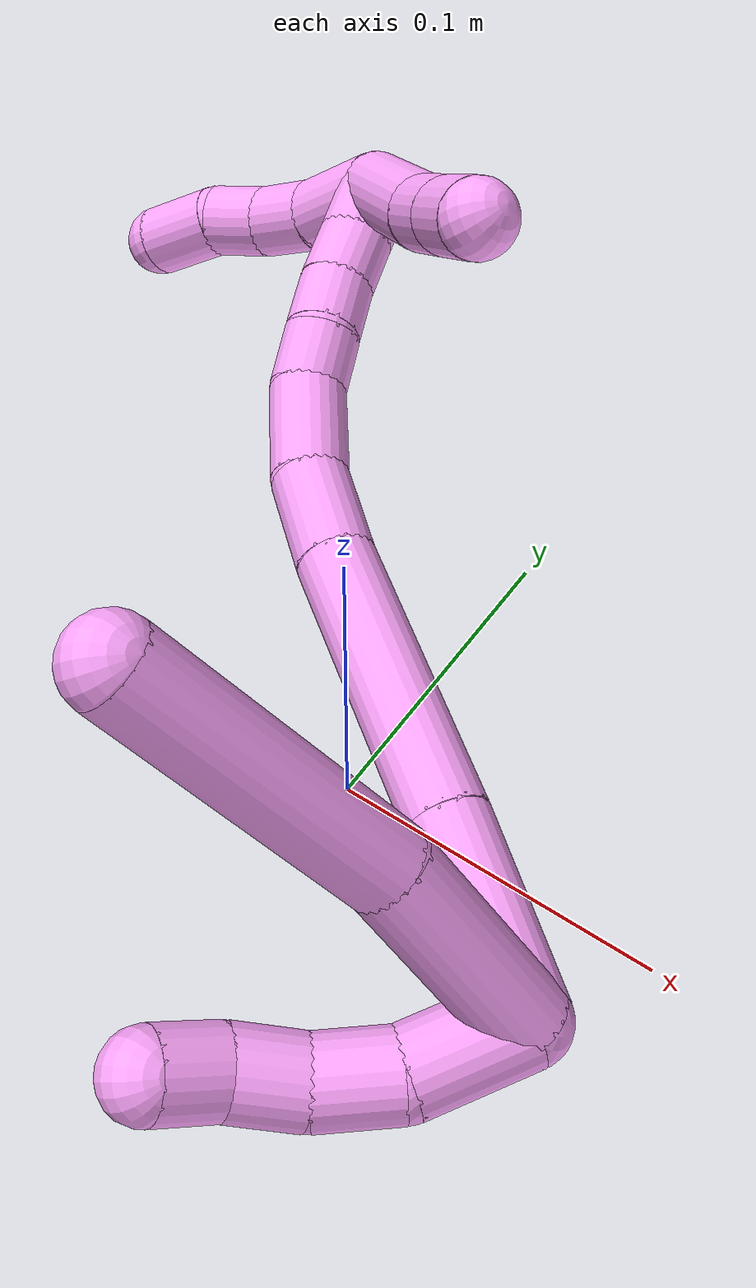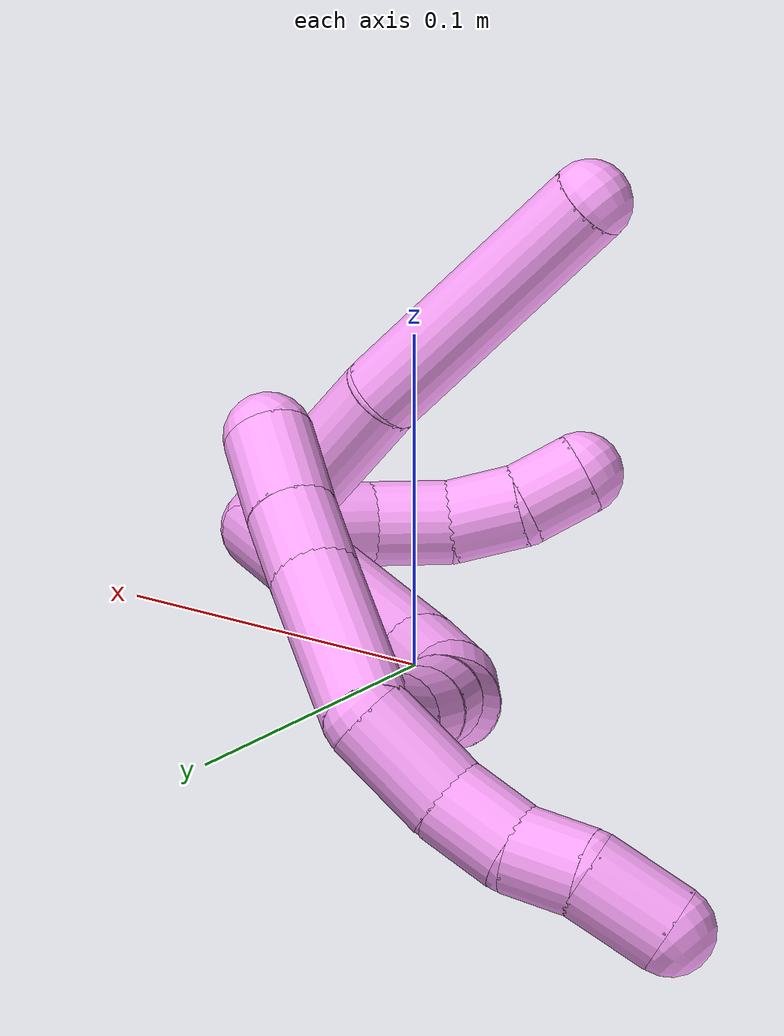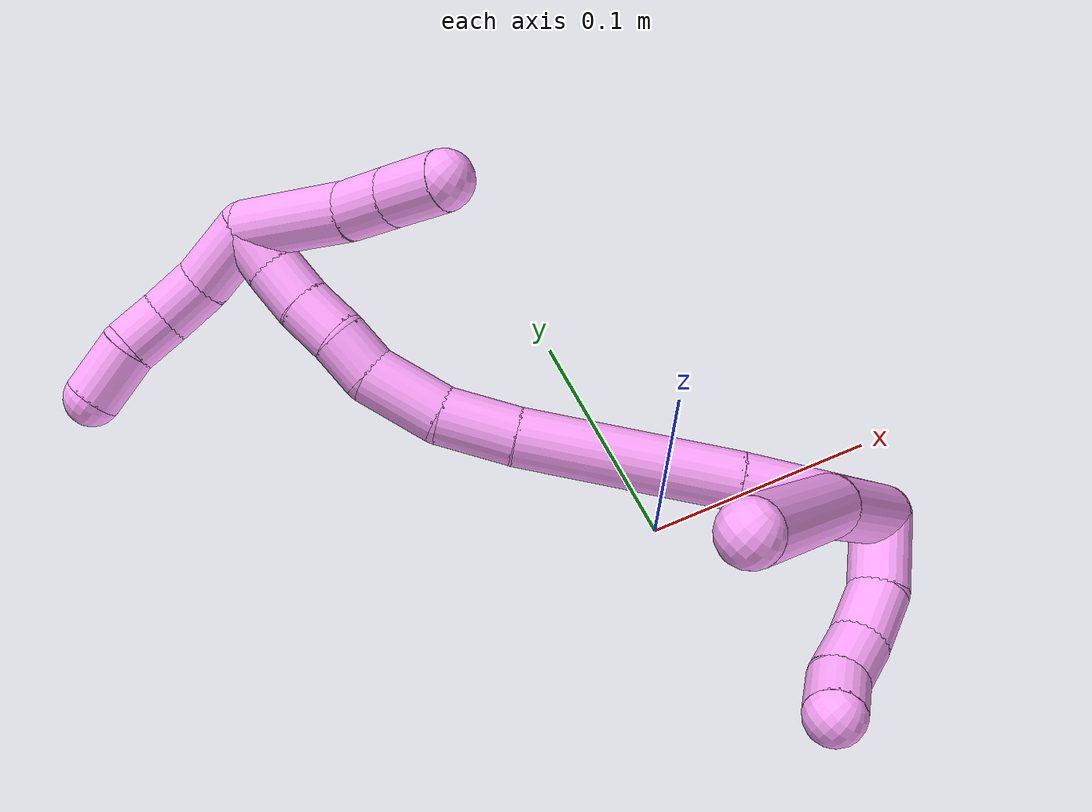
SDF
<sdf version="1.7">
 <world name="default">
  <model name="photoneo_s_sensor">
   <static>1</static>
   <pose>0 0 2 1.57079 1.57079 3.14159</pose>
   <link name="link">
    <inertial><mass>0.1</mass></inertial>
    <sensor name="sensor" type="depth">
     <update_rate>30</update_rate>
     <camera>
      <horizontal_fov>1.22</horizontal_fov>
      <image><width>1920</width><height>1200</height><format>B8G8R8</format></image>
      <clip><near>0.1</near><far>4</far></clip>
      <depth_camera><output>points</output></depth_camera>
     </camera>
     <plugin name="camera_plugin" filename="libgazebo_ros_depth_camera.so">
      <baseline>0.2</baseline>
      <alwaysOn>1</alwaysOn>
      <updateRate>0.0</updateRate>
      <cameraName>camera_ir</cameraName>
      <imageTopicName>/camera/color/image_raw</imageTopicName>
      <cameraInfoTopicName>/camera/color/camera_info</cameraInfoTopicName>
      <depthImageTopicName>/camera/depth/image_raw</depthImageTopicName>
      <depthImageCameraInfoTopicName>/camera/depth/camera_info</depthImageCameraInfoTopicName>
      <pointCloudTopicName>/camera/depth/points</pointCloudTopicName>
      <frameName>fr_optical</frameName>
      <pointCloudCutoff>0.1</pointCloudCutoff>
      <pointCloudCutoffMax>2.0</pointCloudCutoffMax>
      <distortionK1>0</distortionK1>
      <distortionK2>0</distortionK2>
      <distortionK3>0</distortionK3>
      <distortionT1>0</distortionT1>
      <distortionT2>0</distortionT2>
      <CxPrime>0</CxPrime>
      <Cx>0</Cx>
      <Cy>0</Cy>
      <focalLength>0</focalLength>
      <hackBaseline>0</hackBaseline>
     </plugin>
    </sensor>
   </link>
  </model>
  <model name="bin">
   <static>1</static>
   <link name="bottom">
    <collision name="collision-bottom">
     <pose>0 0 -0.01 0 -0 0</pose>
     <geometry><box><size>0.8 0.6 0.02</size></box></geometry>
     <surface>
      <friction><ode><mu>100</mu><mu2>100</mu2></ode></friction>
      <contact><collide_bitmask>65535</collide_bitmask></contact>
     </surface>
    </collision>
   </link>
   <link name="west_wall">
    <collision name="collision-west_wall">
     <pose>-0.41 0 0.1 0 -0 0</pose>
     <geometry><box><size>0.02 0.6 0.2</size></box></geometry>
     <surface>
      <friction><ode><mu>100</mu><mu2>100</mu2></ode></friction>
      <contact><collide_bitmask>65535</collide_bitmask></contact>
     </surface>
    </collision>
   </link>
   <link name="east_wall">
    <collision name="collision-east_wall">
     <pose>0.41 0 0.1 0 -0 0</pose>
     <geometry><box><size>0.02 0.6 0.2</size></box></geometry>
     <surface>
      <friction><ode><mu>100</mu><mu2>100</mu2></ode></friction>
      <contact><collide_bitmask>65535</collide_bitmask></contact>
     </surface>
    </collision>
   </link>
   <link name="south_wall">
    <collision name="collision-south_wall">
     <pose>0 -0.31 0.1 0 -0 0</pose>
     <geometry><box><size>0.8 0.02 0.2</size></box></geometry>
     <surface>
      <friction><ode><mu>100</mu><mu2>100</mu2></ode></friction>
      <contact><collide_bitmask>65535</collide_bitmask></contact>
     </surface>
    </collision>
   </link>
   <link name="north_wall">
    <collision name="collision-north_wall">
     <pose>0 0.31 0.1 0 -0 0</pose>
     <geometry><box><size>0.8 0.02 0.2</size></box></geometry>
     <surface>
      <friction><ode><mu>100</mu><mu2>100</mu2></ode></friction>
      <contact><collide_bitmask>65535</collide_bitmask></contact>
     </surface>
    </collision>
   </link>
  </model>
  <model name="4">
   <static>0</static>
   <link name="4">
    <collision name="collision-cylinder-e_1_2_8">
     <pose>-0.030431 0.002926 0.002023 -0.96581 -1.45442 0.873124</pose>
     <geometry><cylinder><radius>0.0125</radius><length>0.061276</length></cylinder></geometry>
     <surface>
      <friction><ode><mu>1.16</mu><mu2>1.16</mu2><slip1>0</slip1><slip2>0</slip2></ode></friction>
      <contact><ode><kp>1e+06</kp><kd>1</kd><max_vel>0</max_vel><min_depth>0.001</min_depth></ode></contact>
     </surface>
    </collision>
    <visual name="visual-cylinder-e_1_2_8">
     <pose>-0.030431 0.002926 0.002023 -0.96581 -1.45442 0.873124</pose>
     <geometry><cylinder><radius>0.0125</radius><length>0.061276</length></cylinder></geometry>
     <material><ambient>1 0.65098 0.996078 1</ambient></material>
    </visual>
    <collision name="collision-cylinder-e_2_8_6">
     <pose>-0.105145 0.003219 0.004202 1.51184 -1.5113 -1.45256</pose>
     <geometry><cylinder><radius>0.0125</radius><length>0.088724</length></cylinder></geometry>
     <surface>
      <friction><ode><mu>1.16</mu><mu2>1.16</mu2><slip1>0</slip1><slip2>0</slip2></ode></friction>
      <contact><ode><kp>1e+06</kp><kd>1</kd><max_vel>0</max_vel><min_depth>0.001</min_depth></ode></contact>
     </surface>
    </collision>
    <visual name="visual-cylinder-e_2_8_6">
     <pose>-0.105145 0.003219 0.004202 1.51184 -1.5113 -1.45256</pose>
     <geometry><cylinder><radius>0.0125</radius><length>0.088724</length></cylinder></geometry>
     <material><ambient>1 0.65098 0.996078 1</ambient></material>
    </visual>
    <collision name="collision-cylinder-e_1_2_9">
     <pose>-0.007997 -0.011916 -0.009075 2.22168 -0.490427 -0.935523</pose>
     <geometry><cylinder><radius>0.0125</radius><length>0.033959</length></cylinder></geometry>
     <surface>
      <friction><ode><mu>1.16</mu><mu2>1.16</mu2><slip1>0</slip1><slip2>0</slip2></ode></friction>
      <contact><ode><kp>1e+06</kp><kd>1</kd><max_vel>0</max_vel><min_depth>0.001</min_depth></ode></contact>
     </surface>
    </collision>
    <visual name="visual-cylinder-e_1_2_9">
     <pose>-0.007997 -0.011916 -0.009075 2.22168 -0.490427 -0.935523</pose>
     <geometry><cylinder><radius>0.0125</radius><length>0.033959</length></cylinder></geometry>
     <material><ambient>1 0.65098 0.996078 1</ambient></material>
    </visual>
    <collision name="collision-cylinder-e_2_9_10">
     <pose>-0.0237 -0.029314 -0.025626 2.50883 -0.693419 -1.66923</pose>
     <geometry><cylinder><radius>0.0125</radius><length>0.02411</length></cylinder></geometry>
     <surface>
      <friction><ode><mu>1.16</mu><mu2>1.16</mu2><slip1>0</slip1><slip2>0</slip2></ode></friction>
      <contact><ode><kp>1e+06</kp><kd>1</kd><max_vel>0</max_vel><min_depth>0.001</min_depth></ode></contact>
     </surface>
    </collision>
    <visual name="visual-cylinder-e_2_9_10">
     <pose>-0.0237 -0.029314 -0.025626 2.50883 -0.693419 -1.66923</pose>
     <geometry><cylinder><radius>0.0125</radius><length>0.02411</length></cylinder></geometry>
     <material><ambient>1 0.65098 0.996078 1</ambient></material>
    </visual>
    <collision name="collision-cylinder-e_3_10_11">
     <pose>-0.040454 -0.038343 -0.038072 2.5219 -0.977296 -2.05753</pose>
     <geometry><cylinder><radius>0.0125</radius><length>0.021831</length></cylinder></geometry>
     <surface>
      <friction><ode><mu>1.16</mu><mu2>1.16</mu2><slip1>0</slip1><slip2>0</slip2></ode></friction>
      <contact><ode><kp>1e+06</kp><kd>1</kd><max_vel>0</max_vel><min_depth>0.001</min_depth></ode></contact>
     </surface>
    </collision>
    <visual name="visual-cylinder-e_3_10_11">
     <pose>-0.040454 -0.038343 -0.038072 2.5219 -0.977296 -2.05753</pose>
     <geometry><cylinder><radius>0.0125</radius><length>0.021831</length></cylinder></geometry>
     <material><ambient>1 0.65098 0.996078 1</ambient></material>
    </visual>
    <collision name="collision-cylinder-e_4_11_5">
     <pose>-0.057885 -0.047046 -0.045074 1.94615 -0.986498 -1.33675</pose>
     <geometry><cylinder><radius>0.0125</radius><length>0.0201</length></cylinder></geometry>
     <surface>
      <friction><ode><mu>1.16</mu><mu2>1.16</mu2><slip1>0</slip1><slip2>0</slip2></ode></friction>
      <contact><ode><kp>1e+06</kp><kd>1</kd><max_vel>0</max_vel><min_depth>0.001</min_depth></ode></contact>
     </surface>
    </collision>
    <visual name="visual-cylinder-e_4_11_5">
     <pose>-0.057885 -0.047046 -0.045074 1.94615 -0.986498 -1.33675</pose>
     <geometry><cylinder><radius>0.0125</radius><length>0.0201</length></cylinder></geometry>
     <material><ambient>1 0.65098 0.996078 1</ambient></material>
    </visual>
    <collision name="collision-cylinder-e_1_2_12">
     <pose>-0.013792 0.022454 -0.013097 -2.09881 -0.487793 0.817637</pose>
     <geometry><cylinder><radius>0.0125</radius><length>0.058853</length></cylinder></geometry>
     <surface>
      <friction><ode><mu>1.16</mu><mu2>1.16</mu2><slip1>0</slip1><slip2>0</slip2></ode></friction>
      <contact><ode><kp>1e+06</kp><kd>1</kd><max_vel>0</max_vel><min_depth>0.001</min_depth></ode></contact>
     </surface>
    </collision>
    <visual name="visual-cylinder-e_1_2_12">
     <pose>-0.013792 0.022454 -0.013097 -2.09881 -0.487793 0.817637</pose>
     <geometry><cylinder><radius>0.0125</radius><length>0.058853</length></cylinder></geometry>
     <material><ambient>1 0.65098 0.996078 1</ambient></material>
    </visual>
    <collision name="collision-cylinder-e_2_12_13">
     <pose>-0.049412 0.079624 -0.048219 -2.13618 -0.488094 0.850513</pose>
     <geometry><cylinder><radius>0.0125</radius><length>0.093097</length></cylinder></geometry>
     <surface>
      <friction><ode><mu>1.16</mu><mu2>1.16</mu2><slip1>0</slip1><slip2>0</slip2></ode></friction>
      <contact><ode><kp>1e+06</kp><kd>1</kd><max_vel>0</max_vel><min_depth>0.001</min_depth></ode></contact>
     </surface>
    </collision>
    <visual name="visual-cylinder-e_2_12_13">
     <pose>-0.049412 0.079624 -0.048219 -2.13618 -0.488094 0.850513</pose>
     <geometry><cylinder><radius>0.0125</radius><length>0.093097</length></cylinder></geometry>
     <material><ambient>1 0.65098 0.996078 1</ambient></material>
    </visual>
    <collision name="collision-cylinder-e_3_13_14">
     <pose>-0.078499 0.127157 -0.076903 -2.04987 -0.465659 0.744377</pose>
     <geometry><cylinder><radius>0.0125</radius><length>0.032332</length></cylinder></geometry>
     <surface>
      <friction><ode><mu>1.16</mu><mu2>1.16</mu2><slip1>0</slip1><slip2>0</slip2></ode></friction>
      <contact><ode><kp>1e+06</kp><kd>1</kd><max_vel>0</max_vel><min_depth>0.001</min_depth></ode></contact>
     </surface>
    </collision>
    <visual name="visual-cylinder-e_3_13_14">
     <pose>-0.078499 0.127157 -0.076903 -2.04987 -0.465659 0.744377</pose>
     <geometry><cylinder><radius>0.0125</radius><length>0.032332</length></cylinder></geometry>
     <material><ambient>1 0.65098 0.996078 1</ambient></material>
    </visual>
    <collision name="collision-cylinder-e_4_14_15">
     <pose>-0.09199 0.155315 -0.087058 -1.79492 -0.377175 0.469688</pose>
     <geometry><cylinder><radius>0.0125</radius><length>0.033844</length></cylinder></geometry>
     <surface>
      <friction><ode><mu>1.16</mu><mu2>1.16</mu2><slip1>0</slip1><slip2>0</slip2></ode></friction>
      <contact><ode><kp>1e+06</kp><kd>1</kd><max_vel>0</max_vel><min_depth>0.001</min_depth></ode></contact>
     </surface>
    </collision>
    <visual name="visual-cylinder-e_4_14_15">
     <pose>-0.09199 0.155315 -0.087058 -1.79492 -0.377175 0.469688</pose>
     <geometry><cylinder><radius>0.0125</radius><length>0.033844</length></cylinder></geometry>
     <material><ambient>1 0.65098 0.996078 1</ambient></material>
    </visual>
    <collision name="collision-cylinder-e_5_15_16">
     <pose>-0.101318 0.180206 -0.089397 -1.45018 -0.311304 0.276327</pose>
     <geometry><cylinder><radius>0.0125</radius><length>0.020214</length></cylinder></geometry>
     <surface>
      <friction><ode><mu>1.16</mu><mu2>1.16</mu2><slip1>0</slip1><slip2>0</slip2></ode></friction>
      <contact><ode><kp>1e+06</kp><kd>1</kd><max_vel>0</max_vel><min_depth>0.001</min_depth></ode></contact>
     </surface>
    </collision>
    <visual name="visual-cylinder-e_5_15_16">
     <pose>-0.101318 0.180206 -0.089397 -1.45018 -0.311304 0.276327</pose>
     <geometry><cylinder><radius>0.0125</radius><length>0.020214</length></cylinder></geometry>
     <material><ambient>1 0.65098 0.996078 1</ambient></material>
    </visual>
    <collision name="collision-cylinder-e_6_16_17">
     <pose>-0.106401 0.199799 -0.088652 -1.61188 -0.195175 0.203309</pose>
     <geometry><cylinder><radius>0.0125</radius><length>0.02049</length></cylinder></geometry>
     <surface>
      <friction><ode><mu>1.16</mu><mu2>1.16</mu2><slip1>0</slip1><slip2>0</slip2></ode></friction>
      <contact><ode><kp>1e+06</kp><kd>1</kd><max_vel>0</max_vel><min_depth>0.001</min_depth></ode></contact>
     </surface>
    </collision>
    <visual name="visual-cylinder-e_6_16_17">
     <pose>-0.106401 0.199799 -0.088652 -1.61188 -0.195175 0.203309</pose>
     <geometry><cylinder><radius>0.0125</radius><length>0.02049</length></cylinder></geometry>
     <material><ambient>1 0.65098 0.996078 1</ambient></material>
    </visual>
    <collision name="collision-cylinder-e_7_17_18">
     <pose>-0.109931 0.219819 -0.088353 -1.49954 -0.153017 0.14252</pose>
     <geometry><cylinder><radius>0.0125</radius><length>0.020243</length></cylinder></geometry>
     <surface>
      <friction><ode><mu>1.16</mu><mu2>1.16</mu2><slip1>0</slip1><slip2>0</slip2></ode></friction>
      <contact><ode><kp>1e+06</kp><kd>1</kd><max_vel>0</max_vel><min_depth>0.001</min_depth></ode></contact>
     </surface>
    </collision>
    <visual name="visual-cylinder-e_7_17_18">
     <pose>-0.109931 0.219819 -0.088353 -1.49954 -0.153017 0.14252</pose>
     <geometry><cylinder><radius>0.0125</radius><length>0.020243</length></cylinder></geometry>
     <material><ambient>1 0.65098 0.996078 1</ambient></material>
    </visual>
    <collision name="collision-cylinder-e_8_18_1">
     <pose>-0.113638 0.239872 -0.085826 -1.39259 -0.208403 0.174409</pose>
     <geometry><cylinder><radius>0.0125</radius><length>0.020927</length></cylinder></geometry>
     <surface>
      <friction><ode><mu>1.16</mu><mu2>1.16</mu2><slip1>0</slip1><slip2>0</slip2></ode></friction>
      <contact><ode><kp>1e+06</kp><kd>1</kd><max_vel>0</max_vel><min_depth>0.001</min_depth></ode></contact>
     </surface>
    </collision>
    <visual name="visual-cylinder-e_8_18_1">
     <pose>-0.113638 0.239872 -0.085826 -1.39259 -0.208403 0.174409</pose>
     <geometry><cylinder><radius>0.0125</radius><length>0.020927</length></cylinder></geometry>
     <material><ambient>1 0.65098 0.996078 1</ambient></material>
    </visual>
    <collision name="collision-cylinder-e_1_1_19">
     <pose>-0.116992 0.249839 -0.099203 3.13453 -0.078137 -2.96138</pose>
     <geometry><cylinder><radius>0.0125</radius><length>0.030477</length></cylinder></geometry>
     <surface>
      <friction><ode><mu>1.16</mu><mu2>1.16</mu2><slip1>0</slip1><slip2>0</slip2></ode></friction>
      <contact><ode><kp>1e+06</kp><kd>1</kd><max_vel>0</max_vel><min_depth>0.001</min_depth></ode></contact>
     </surface>
    </collision>
    <visual name="visual-cylinder-e_1_1_19">
     <pose>-0.116992 0.249839 -0.099203 3.13453 -0.078137 -2.96138</pose>
     <geometry><cylinder><radius>0.0125</radius><length>0.030477</length></cylinder></geometry>
     <material><ambient>1 0.65098 0.996078 1</ambient></material>
    </visual>
    <collision name="collision-cylinder-e_2_19_20">
     <pose>-0.121313 0.250221 -0.125206 -3.09638 -0.281627 2.82522</pose>
     <geometry><cylinder><radius>0.0125</radius><length>0.022532</length></cylinder></geometry>
     <surface>
      <friction><ode><mu>1.16</mu><mu2>1.16</mu2><slip1>0</slip1><slip2>0</slip2></ode></friction>
      <contact><ode><kp>1e+06</kp><kd>1</kd><max_vel>0</max_vel><min_depth>0.001</min_depth></ode></contact>
     </surface>
    </collision>
    <visual name="visual-cylinder-e_2_19_20">
     <pose>-0.121313 0.250221 -0.125206 -3.09638 -0.281627 2.82522</pose>
     <geometry><cylinder><radius>0.0125</radius><length>0.022532</length></cylinder></geometry>
     <material><ambient>1 0.65098 0.996078 1</ambient></material>
    </visual>
    <collision name="collision-cylinder-e_3_20_21">
     <pose>-0.12969 0.249928 -0.144628 3.05099 -0.545391 -2.82021</pose>
     <geometry><cylinder><radius>0.0125</radius><length>0.020227</length></cylinder></geometry>
     <surface>
      <friction><ode><mu>1.16</mu><mu2>1.16</mu2><slip1>0</slip1><slip2>0</slip2></ode></friction>
      <contact><ode><kp>1e+06</kp><kd>1</kd><max_vel>0</max_vel><min_depth>0.001</min_depth></ode></contact>
     </surface>
    </collision>
    <visual name="visual-cylinder-e_3_20_21">
     <pose>-0.12969 0.249928 -0.144628 3.05099 -0.545391 -2.82021</pose>
     <geometry><cylinder><radius>0.0125</radius><length>0.020227</length></cylinder></geometry>
     <material><ambient>1 0.65098 0.996078 1</ambient></material>
    </visual>
    <collision name="collision-cylinder-e_4_21_4">
     <pose>-0.137974 0.246929 -0.166081 2.9707 -0.228932 -1.86096</pose>
     <geometry><cylinder><radius>0.0125</radius><length>0.026764</length></cylinder></geometry>
     <surface>
      <friction><ode><mu>1.16</mu><mu2>1.16</mu2><slip1>0</slip1><slip2>0</slip2></ode></friction>
      <contact><ode><kp>1e+06</kp><kd>1</kd><max_vel>0</max_vel><min_depth>0.001</min_depth></ode></contact>
     </surface>
    </collision>
    <visual name="visual-cylinder-e_4_21_4">
     <pose>-0.137974 0.246929 -0.166081 2.9707 -0.228932 -1.86096</pose>
     <geometry><cylinder><radius>0.0125</radius><length>0.026764</length></cylinder></geometry>
     <material><ambient>1 0.65098 0.996078 1</ambient></material>
    </visual>
    <collision name="collision-cylinder-e_1_1_22">
     <pose>-0.114732 0.233535 -0.064002 0.686933 0.041378 0.0148</pose>
     <geometry><cylinder><radius>0.0125</radius><length>0.0518</length></cylinder></geometry>
     <surface>
      <friction><ode><mu>1.16</mu><mu2>1.16</mu2><slip1>0</slip1><slip2>0</slip2></ode></friction>
      <contact><ode><kp>1e+06</kp><kd>1</kd><max_vel>0</max_vel><min_depth>0.001</min_depth></ode></contact>
     </surface>
    </collision>
    <visual name="visual-cylinder-e_1_1_22">
     <pose>-0.114732 0.233535 -0.064002 0.686933 0.041378 0.0148</pose>
     <geometry><cylinder><radius>0.0125</radius><length>0.0518</length></cylinder></geometry>
     <material><ambient>1 0.65098 0.996078 1</ambient></material>
    </visual>
    <collision name="collision-cylinder-e_2_22_23">
     <pose>-0.114142 0.210924 -0.03475 0.590893 -0.043298 -0.01318</pose>
     <geometry><cylinder><radius>0.0125</radius><length>0.022282</length></cylinder></geometry>
     <surface>
      <friction><ode><mu>1.16</mu><mu2>1.16</mu2><slip1>0</slip1><slip2>0</slip2></ode></friction>
      <contact><ode><kp>1e+06</kp><kd>1</kd><max_vel>0</max_vel><min_depth>0.001</min_depth></ode></contact>
     </surface>
    </collision>
    <visual name="visual-cylinder-e_2_22_23">
     <pose>-0.114142 0.210924 -0.03475 0.590893 -0.043298 -0.01318</pose>
     <geometry><cylinder><radius>0.0125</radius><length>0.022282</length></cylinder></geometry>
     <material><ambient>1 0.65098 0.996078 1</ambient></material>
    </visual>
    <collision name="collision-cylinder-e_3_23_3">
     <pose>-0.115613 0.197335 -0.014906 0.60861 -0.076382 -0.023999</pose>
     <geometry><cylinder><radius>0.0125</radius><length>0.025918</length></cylinder></geometry>
     <surface>
      <friction><ode><mu>1.16</mu><mu2>1.16</mu2><slip1>0</slip1><slip2>0</slip2></ode></friction>
      <contact><ode><kp>1e+06</kp><kd>1</kd><max_vel>0</max_vel><min_depth>0.001</min_depth></ode></contact>
     </surface>
    </collision>
    <visual name="visual-cylinder-e_3_23_3">
     <pose>-0.115613 0.197335 -0.014906 0.60861 -0.076382 -0.023999</pose>
     <geometry><cylinder><radius>0.0125</radius><length>0.025918</length></cylinder></geometry>
     <material><ambient>1 0.65098 0.996078 1</ambient></material>
    </visual>
    <collision name="collision-sphere-3">
     <pose>-0.116602 0.189948 -0.004305 0 -0 0</pose>
     <geometry><sphere><radius>0.0125</radius></sphere></geometry>
     <surface>
      <friction><ode><mu>1.16</mu><mu2>1.16</mu2><slip1>0</slip1><slip2>0</slip2></ode></friction>
      <contact><ode><kp>1e+06</kp><kd>1</kd><max_vel>0</max_vel><min_depth>0.001</min_depth></ode></contact>
     </surface>
    </collision>
    <visual name="visual-sphere-3">
     <pose>-0.116602 0.189948 -0.004305 0 -0 0</pose>
     <geometry><sphere><radius>0.0125</radius></sphere></geometry>
     <material><ambient>1 0.65098 0.996078 1</ambient></material>
    </visual>
    <collision name="collision-sphere-23">
     <pose>-0.114625 0.204723 -0.025507 0 -0 0</pose>
     <geometry><sphere><radius>0.0125</radius></sphere></geometry>
     <surface>
      <friction><ode><mu>1.16</mu><mu2>1.16</mu2><slip1>0</slip1><slip2>0</slip2></ode></friction>
      <contact><ode><kp>1e+06</kp><kd>1</kd><max_vel>0</max_vel><min_depth>0.001</min_depth></ode></contact>
     </surface>
    </collision>
    <visual name="visual-sphere-23">
     <pose>-0.114625 0.204723 -0.025507 0 -0 0</pose>
     <geometry><sphere><radius>0.0125</radius></sphere></geometry>
     <material><ambient>1 0.65098 0.996078 1</ambient></material>
    </visual>
    <collision name="collision-sphere-22">
     <pose>-0.11366 0.217124 -0.043994 0 -0 0</pose>
     <geometry><sphere><radius>0.0125</radius></sphere></geometry>
     <surface>
      <friction><ode><mu>1.16</mu><mu2>1.16</mu2><slip1>0</slip1><slip2>0</slip2></ode></friction>
      <contact><ode><kp>1e+06</kp><kd>1</kd><max_vel>0</max_vel><min_depth>0.001</min_depth></ode></contact>
     </surface>
    </collision>
    <visual name="visual-sphere-22">
     <pose>-0.11366 0.217124 -0.043994 0 -0 0</pose>
     <geometry><sphere><radius>0.0125</radius></sphere></geometry>
     <material><ambient>1 0.65098 0.996078 1</ambient></material>
    </visual>
    <collision name="collision-sphere-4">
     <pose>-0.14101 0.244713 -0.178924 0 -0 0</pose>
     <geometry><sphere><radius>0.0125</radius></sphere></geometry>
     <surface>
      <friction><ode><mu>1.16</mu><mu2>1.16</mu2><slip1>0</slip1><slip2>0</slip2></ode></friction>
      <contact><ode><kp>1e+06</kp><kd>1</kd><max_vel>0</max_vel><min_depth>0.001</min_depth></ode></contact>
     </surface>
    </collision>
    <visual name="visual-sphere-4">
     <pose>-0.14101 0.244713 -0.178924 0 -0 0</pose>
     <geometry><sphere><radius>0.0125</radius></sphere></geometry>
     <material><ambient>1 0.65098 0.996078 1</ambient></material>
    </visual>
    <collision name="collision-sphere-21">
     <pose>-0.134937 0.249146 -0.153238 0 -0 0</pose>
     <geometry><sphere><radius>0.0125</radius></sphere></geometry>
     <surface>
      <friction><ode><mu>1.16</mu><mu2>1.16</mu2><slip1>0</slip1><slip2>0</slip2></ode></friction>
      <contact><ode><kp>1e+06</kp><kd>1</kd><max_vel>0</max_vel><min_depth>0.001</min_depth></ode></contact>
     </surface>
    </collision>
    <visual name="visual-sphere-21">
     <pose>-0.134937 0.249146 -0.153238 0 -0 0</pose>
     <geometry><sphere><radius>0.0125</radius></sphere></geometry>
     <material><ambient>1 0.65098 0.996078 1</ambient></material>
    </visual>
    <collision name="collision-sphere-20">
     <pose>-0.124444 0.25071 -0.136017 0 -0 0</pose>
     <geometry><sphere><radius>0.0125</radius></sphere></geometry>
     <surface>
      <friction><ode><mu>1.16</mu><mu2>1.16</mu2><slip1>0</slip1><slip2>0</slip2></ode></friction>
      <contact><ode><kp>1e+06</kp><kd>1</kd><max_vel>0</max_vel><min_depth>0.001</min_depth></ode></contact>
     </surface>
    </collision>
    <visual name="visual-sphere-20">
     <pose>-0.124444 0.25071 -0.136017 0 -0 0</pose>
     <geometry><sphere><radius>0.0125</radius></sphere></geometry>
     <material><ambient>1 0.65098 0.996078 1</ambient></material>
    </visual>
    <collision name="collision-sphere-11">
     <pose>-0.049503 -0.041888 -0.043042 0 -0 0</pose>
     <geometry><sphere><radius>0.0125</radius></sphere></geometry>
     <surface>
      <friction><ode><mu>1.16</mu><mu2>1.16</mu2><slip1>0</slip1><slip2>0</slip2></ode></friction>
      <contact><ode><kp>1e+06</kp><kd>1</kd><max_vel>0</max_vel><min_depth>0.001</min_depth></ode></contact>
     </surface>
    </collision>
    <visual name="visual-sphere-11">
     <pose>-0.049503 -0.041888 -0.043042 0 -0 0</pose>
     <geometry><sphere><radius>0.0125</radius></sphere></geometry>
     <material><ambient>1 0.65098 0.996078 1</ambient></material>
    </visual>
    <collision name="collision-sphere-10">
     <pose>-0.031405 -0.034797 -0.033103 0 -0 0</pose>
     <geometry><sphere><radius>0.0125</radius></sphere></geometry>
     <surface>
      <friction><ode><mu>1.16</mu><mu2>1.16</mu2><slip1>0</slip1><slip2>0</slip2></ode></friction>
      <contact><ode><kp>1e+06</kp><kd>1</kd><max_vel>0</max_vel><min_depth>0.001</min_depth></ode></contact>
     </surface>
    </collision>
    <visual name="visual-sphere-10">
     <pose>-0.031405 -0.034797 -0.033103 0 -0 0</pose>
     <geometry><sphere><radius>0.0125</radius></sphere></geometry>
     <material><ambient>1 0.65098 0.996078 1</ambient></material>
    </visual>
    <collision name="collision-sphere-6">
     <pose>-0.149429 0.000586 0.004357 0 -0 0</pose>
     <geometry><sphere><radius>0.0125</radius></sphere></geometry>
     <surface>
      <friction><ode><mu>1.16</mu><mu2>1.16</mu2><slip1>0</slip1><slip2>0</slip2></ode></friction>
      <contact><ode><kp>1e+06</kp><kd>1</kd><max_vel>0</max_vel><min_depth>0.001</min_depth></ode></contact>
     </surface>
    </collision>
    <visual name="visual-sphere-6">
     <pose>-0.149429 0.000586 0.004357 0 -0 0</pose>
     <geometry><sphere><radius>0.0125</radius></sphere></geometry>
     <material><ambient>1 0.65098 0.996078 1</ambient></material>
    </visual>
    <collision name="collision-sphere-9">
     <pose>-0.015995 -0.023832 -0.01815 0 -0 0</pose>
     <geometry><sphere><radius>0.0125</radius></sphere></geometry>
     <surface>
      <friction><ode><mu>1.16</mu><mu2>1.16</mu2><slip1>0</slip1><slip2>0</slip2></ode></friction>
      <contact><ode><kp>1e+06</kp><kd>1</kd><max_vel>0</max_vel><min_depth>0.001</min_depth></ode></contact>
     </surface>
    </collision>
    <visual name="visual-sphere-9">
     <pose>-0.015995 -0.023832 -0.01815 0 -0 0</pose>
     <geometry><sphere><radius>0.0125</radius></sphere></geometry>
     <material><ambient>1 0.65098 0.996078 1</ambient></material>
    </visual>
    <collision name="collision-sphere-2">
     <geometry><sphere><radius>0.0125</radius></sphere></geometry>
     <surface>
      <friction><ode><mu>1.16</mu><mu2>1.16</mu2><slip1>0</slip1><slip2>0</slip2></ode></friction>
      <contact><ode><kp>1e+06</kp><kd>1</kd><max_vel>0</max_vel><min_depth>0.001</min_depth></ode></contact>
     </surface>
    </collision>
    <visual name="visual-sphere-2">
     <geometry><sphere><radius>0.0125</radius></sphere></geometry>
     <material><ambient>1 0.65098 0.996078 1</ambient></material>
    </visual>
    <collision name="collision-sphere-19">
     <pose>-0.118182 0.249732 -0.114394 0 -0 0</pose>
     <geometry><sphere><radius>0.0125</radius></sphere></geometry>
     <surface>
      <friction><ode><mu>1.16</mu><mu2>1.16</mu2><slip1>0</slip1><slip2>0</slip2></ode></friction>
      <contact><ode><kp>1e+06</kp><kd>1</kd><max_vel>0</max_vel><min_depth>0.001</min_depth></ode></contact>
     </surface>
    </collision>
    <visual name="visual-sphere-19">
     <pose>-0.118182 0.249732 -0.114394 0 -0 0</pose>
     <geometry><sphere><radius>0.0125</radius></sphere></geometry>
     <material><ambient>1 0.65098 0.996078 1</ambient></material>
    </visual>
    <collision name="collision-sphere-8">
     <pose>-0.060861 0.005852 0.004046 0 -0 0</pose>
     <geometry><sphere><radius>0.0125</radius></sphere></geometry>
     <surface>
      <friction><ode><mu>1.16</mu><mu2>1.16</mu2><slip1>0</slip1><slip2>0</slip2></ode></friction>
      <contact><ode><kp>1e+06</kp><kd>1</kd><max_vel>0</max_vel><min_depth>0.001</min_depth></ode></contact>
     </surface>
    </collision>
    <visual name="visual-sphere-8">
     <pose>-0.060861 0.005852 0.004046 0 -0 0</pose>
     <geometry><sphere><radius>0.0125</radius></sphere></geometry>
     <material><ambient>1 0.65098 0.996078 1</ambient></material>
    </visual>
    <collision name="collision-sphere-5">
     <pose>-0.066268 -0.052204 -0.047106 0 -0 0</pose>
     <geometry><sphere><radius>0.0125</radius></sphere></geometry>
     <surface>
      <friction><ode><mu>1.16</mu><mu2>1.16</mu2><slip1>0</slip1><slip2>0</slip2></ode></friction>
      <contact><ode><kp>1e+06</kp><kd>1</kd><max_vel>0</max_vel><min_depth>0.001</min_depth></ode></contact>
     </surface>
    </collision>
    <visual name="visual-sphere-5">
     <pose>-0.066268 -0.052204 -0.047106 0 -0 0</pose>
     <geometry><sphere><radius>0.0125</radius></sphere></geometry>
     <material><ambient>1 0.65098 0.996078 1</ambient></material>
    </visual>
    <collision name="collision-sphere-12">
     <pose>-0.027583 0.044909 -0.026193 0 -0 0</pose>
     <geometry><sphere><radius>0.0125</radius></sphere></geometry>
     <surface>
      <friction><ode><mu>1.16</mu><mu2>1.16</mu2><slip1>0</slip1><slip2>0</slip2></ode></friction>
      <contact><ode><kp>1e+06</kp><kd>1</kd><max_vel>0</max_vel><min_depth>0.001</min_depth></ode></contact>
     </surface>
    </collision>
    <visual name="visual-sphere-12">
     <pose>-0.027583 0.044909 -0.026193 0 -0 0</pose>
     <geometry><sphere><radius>0.0125</radius></sphere></geometry>
     <material><ambient>1 0.65098 0.996078 1</ambient></material>
    </visual>
    <collision name="collision-sphere-13">
     <pose>-0.07124 0.114339 -0.070245 0 -0 0</pose>
     <geometry><sphere><radius>0.0125</radius></sphere></geometry>
     <surface>
      <friction><ode><mu>1.16</mu><mu2>1.16</mu2><slip1>0</slip1><slip2>0</slip2></ode></friction>
      <contact><ode><kp>1e+06</kp><kd>1</kd><max_vel>0</max_vel><min_depth>0.001</min_depth></ode></contact>
     </surface>
    </collision>
    <visual name="visual-sphere-13">
     <pose>-0.07124 0.114339 -0.070245 0 -0 0</pose>
     <geometry><sphere><radius>0.0125</radius></sphere></geometry>
     <material><ambient>1 0.65098 0.996078 1</ambient></material>
    </visual>
    <collision name="collision-sphere-14">
     <pose>-0.085758 0.139976 -0.083561 0 -0 0</pose>
     <geometry><sphere><radius>0.0125</radius></sphere></geometry>
     <surface>
      <friction><ode><mu>1.16</mu><mu2>1.16</mu2><slip1>0</slip1><slip2>0</slip2></ode></friction>
      <contact><ode><kp>1e+06</kp><kd>1</kd><max_vel>0</max_vel><min_depth>0.001</min_depth></ode></contact>
     </surface>
    </collision>
    <visual name="visual-sphere-14">
     <pose>-0.085758 0.139976 -0.083561 0 -0 0</pose>
     <geometry><sphere><radius>0.0125</radius></sphere></geometry>
     <material><ambient>1 0.65098 0.996078 1</ambient></material>
    </visual>
    <collision name="collision-sphere-15">
     <pose>-0.098222 0.170654 -0.090555 0 -0 0</pose>
     <geometry><sphere><radius>0.0125</radius></sphere></geometry>
     <surface>
      <friction><ode><mu>1.16</mu><mu2>1.16</mu2><slip1>0</slip1><slip2>0</slip2></ode></friction>
      <contact><ode><kp>1e+06</kp><kd>1</kd><max_vel>0</max_vel><min_depth>0.001</min_depth></ode></contact>
     </surface>
    </collision>
    <visual name="visual-sphere-15">
     <pose>-0.098222 0.170654 -0.090555 0 -0 0</pose>
     <geometry><sphere><radius>0.0125</radius></sphere></geometry>
     <material><ambient>1 0.65098 0.996078 1</ambient></material>
    </visual>
    <collision name="collision-sphere-16">
     <pose>-0.104414 0.189757 -0.088239 0 -0 0</pose>
     <geometry><sphere><radius>0.0125</radius></sphere></geometry>
     <surface>
      <friction><ode><mu>1.16</mu><mu2>1.16</mu2><slip1>0</slip1><slip2>0</slip2></ode></friction>
      <contact><ode><kp>1e+06</kp><kd>1</kd><max_vel>0</max_vel><min_depth>0.001</min_depth></ode></contact>
     </surface>
    </collision>
    <visual name="visual-sphere-16">
     <pose>-0.104414 0.189757 -0.088239 0 -0 0</pose>
     <geometry><sphere><radius>0.0125</radius></sphere></geometry>
     <material><ambient>1 0.65098 0.996078 1</ambient></material>
    </visual>
    <collision name="collision-sphere-17">
     <pose>-0.108388 0.209841 -0.089065 0 -0 0</pose>
     <geometry><sphere><radius>0.0125</radius></sphere></geometry>
     <surface>
      <friction><ode><mu>1.16</mu><mu2>1.16</mu2><slip1>0</slip1><slip2>0</slip2></ode></friction>
      <contact><ode><kp>1e+06</kp><kd>1</kd><max_vel>0</max_vel><min_depth>0.001</min_depth></ode></contact>
     </surface>
    </collision>
    <visual name="visual-sphere-17">
     <pose>-0.108388 0.209841 -0.089065 0 -0 0</pose>
     <geometry><sphere><radius>0.0125</radius></sphere></geometry>
     <material><ambient>1 0.65098 0.996078 1</ambient></material>
    </visual>
    <collision name="collision-sphere-18">
     <pose>-0.111473 0.229797 -0.08764 0 -0 0</pose>
     <geometry><sphere><radius>0.0125</radius></sphere></geometry>
     <surface>
      <friction><ode><mu>1.16</mu><mu2>1.16</mu2><slip1>0</slip1><slip2>0</slip2></ode></friction>
      <contact><ode><kp>1e+06</kp><kd>1</kd><max_vel>0</max_vel><min_depth>0.001</min_depth></ode></contact>
     </surface>
    </collision>
    <visual name="visual-sphere-18">
     <pose>-0.111473 0.229797 -0.08764 0 -0 0</pose>
     <geometry><sphere><radius>0.0125</radius></sphere></geometry>
     <material><ambient>1 0.65098 0.996078 1</ambient></material>
    </visual>
    <collision name="collision-sphere-1">
     <pose>-0.115803 0.249946 -0.084011 0 -0 0</pose>
     <geometry><sphere><radius>0.0125</radius></sphere></geometry>
     <surface>
      <friction><ode><mu>1.16</mu><mu2>1.16</mu2><slip1>0</slip1><slip2>0</slip2></ode></friction>
      <contact><ode><kp>1e+06</kp><kd>1</kd><max_vel>0</max_vel><min_depth>0.001</min_depth></ode></contact>
     </surface>
    </collision>
    <visual name="visual-sphere-1">
     <pose>-0.115803 0.249946 -0.084011 0 -0 0</pose>
     <geometry><sphere><radius>0.0125</radius></sphere></geometry>
     <material><ambient>1 0.65098 0.996078 1</ambient></material>
    </visual>
    <inertial>
     <pose>-0.077434 0.106276 -0.050344 0 -0 0</pose>
     <mass>0.75</mass>
     <inertia>
      <ixx>0.000106</ixx>
      <ixy>0</ixy>
      <ixz>0</ixz>
      <iyy>0.000167</iyy>
      <iyz>0</iyz>
      <izz>6.5e-05</izz>
     </inertia>
    </inertial>
   </link>
   <pose>0.082433 -0.038019 0.01412 0.116817 0.805178 0.303994</pose>
  </model>
 </world>
</sdf>
